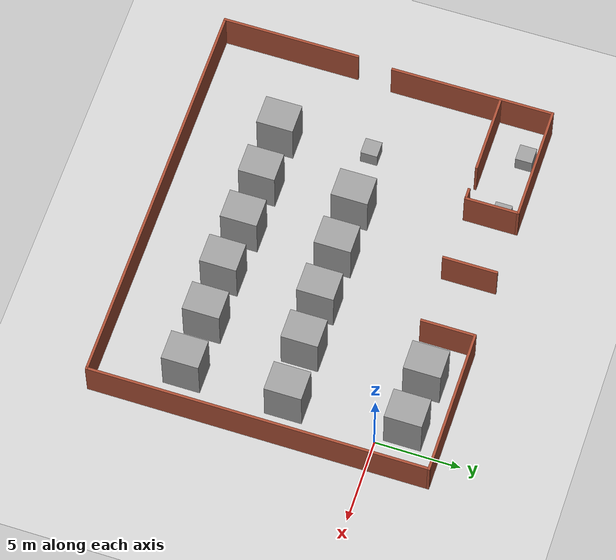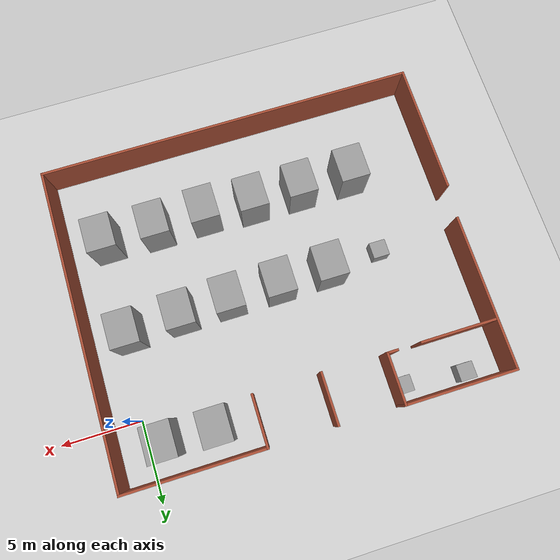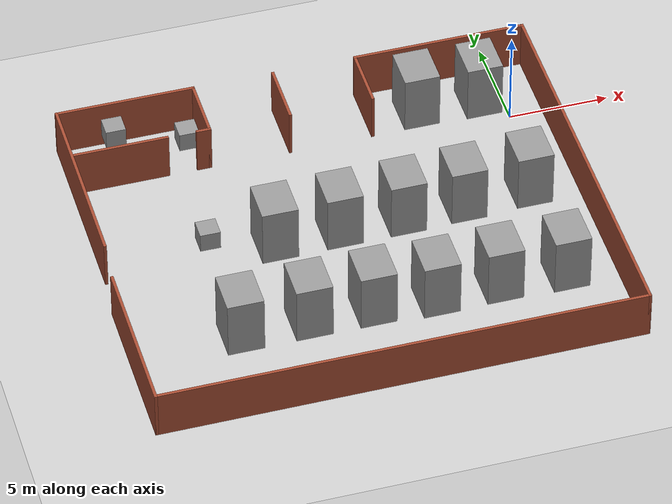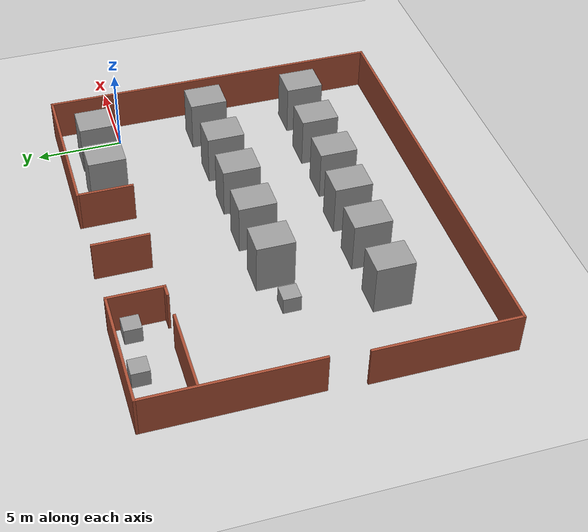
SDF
<sdf version="1.6">
 <world name="default">
  <light name="sun" type="directional">
   <pose>0 0 10 0 -0 0</pose>
   <diffuse>0.8 0.8 0.8 1</diffuse>
   <specular>0.2 0.2 0.2 1</specular>
   <attenuation>
    <range>1000</range>
    <constant>0.9</constant>
    <linear>0.01</linear>
    <quadratic>0.001</quadratic>
   </attenuation>
   <direction>-0.5 0.1 -0.9</direction>
  </light>
  <model name="ground_plane">
   <static>1</static>
   <link name="link">
    <collision name="collision">
     <geometry><plane><normal>0 0 1</normal><size>100 100</size></plane></geometry>
     <surface><friction><ode><mu>100</mu><mu2>50</mu2></ode></friction></surface>
    </collision>
    <visual name="visual">
     <cast_shadows>0</cast_shadows>
     <geometry><plane><normal>0 0 1</normal><size>100 100</size></plane></geometry>
     <material>
      <script><uri>file://media/materials/scripts/gazebo.material</uri><name>Gazebo/Grey</name></script>
     </material>
    </visual>
   </link>
  </model>
  <gravity>0 0 -9.8</gravity>
  <magnetic_field>6e-06 2.3e-05 -4.2e-05</magnetic_field>
  <atmosphere type="adiabatic"/>
  <physics name="default_physics" default="0" type="ode">
   <max_step_size>0.001</max_step_size>
   <real_time_factor>1</real_time_factor>
   <real_time_update_rate>1000</real_time_update_rate>
  </physics>
  <scene><ambient>0.4 0.4 0.4 1</ambient><background>0.7 0.7 0.7 1</background><shadows>1</shadows></scene>
  <spherical_coordinates>
   <surface_model>EARTH_WGS84</surface_model>
   <latitude_deg>0</latitude_deg>
   <longitude_deg>0</longitude_deg>
   <elevation>0</elevation>
   <heading_deg>0</heading_deg>
  </spherical_coordinates>
  <model name="enviroment_1">
   <pose>-10.1914 -6.24566 0 0 -0 0</pose>
   <link name="Wall_0">
    <collision name="Wall_0_Collision">
     <geometry><box><size>8.25 0.15 2.5</size></box></geometry>
     <pose>0 0 1.25 0 -0 0</pose>
    </collision>
    <visual name="Wall_0_Visual">
     <pose>0 0 1.25 0 -0 0</pose>
     <geometry><box><size>8.25 0.15 2.5</size></box></geometry>
     <material>
      <script><uri>file://media/materials/scripts/gazebo.material</uri><name>Gazebo/Bricks</name></script>
      <ambient>1 1 1 1</ambient>
     </material>
     <meta><layer>0</layer></meta>
    </visual>
    <pose>-11.925 -5.8997 0 0 -0 -1.5708</pose>
   </link>
   <link name="Wall_1">
    <collision name="Wall_1_Collision">
     <geometry><box><size>24 0.15 2.5</size></box></geometry>
     <pose>0 0 1.25 0 -0 0</pose>
    </collision>
    <visual name="Wall_1_Visual">
     <pose>0 0 1.25 0 -0 0</pose>
     <geometry><box><size>24 0.15 2.5</size></box></geometry>
     <material>
      <script><uri>file://media/materials/scripts/gazebo.material</uri><name>Gazebo/Bricks</name></script>
      <ambient>1 1 1 1</ambient>
     </material>
     <meta><layer>0</layer></meta>
    </visual>
    <pose>0 -9.9497 0 0 -0 0</pose>
   </link>
   <link name="Wall_11">
    <collision name="Wall_11_Collision">
     <geometry><box><size>3.25 0.15 2.5</size></box></geometry>
     <pose>0 0 1.25 0 -0 0</pose>
    </collision>
    <visual name="Wall_11_Visual">
     <pose>0 0 1.25 0 -0 0</pose>
     <geometry><box><size>3.25 0.15 2.5</size></box></geometry>
     <material>
      <script><uri>file://media/materials/scripts/gazebo.material</uri><name>Gazebo/Bricks</name></script>
      <ambient>1 1 1 1</ambient>
     </material>
     <meta><layer>0</layer></meta>
    </visual>
    <pose>-0.85303 8.33887 0 0 -0 1.5708</pose>
   </link>
   <link name="Wall_13">
    <collision name="Wall_13_Collision">
     <geometry><box><size>4.75 0.15 2.5</size></box></geometry>
     <pose>0 0 1.25 0 -0 0</pose>
    </collision>
    <visual name="Wall_13_Visual">
     <pose>0 0 1.25 0 -0 0</pose>
     <geometry><box><size>4.75 0.15 2.5</size></box></geometry>
     <material>
      <script><uri>file://media/materials/scripts/gazebo.material</uri><name>Gazebo/Bricks</name></script>
      <ambient>1 1 1 1</ambient>
     </material>
     <meta><layer>0</layer></meta>
    </visual>
    <pose>-9.29736 6.8497 0 0 -0 3.14159</pose>
   </link>
   <link name="Wall_2">
    <collision name="Wall_2_Collision">
     <geometry><box><size>20 0.15 2.5</size></box></geometry>
     <pose>0 0 1.25 0 -0 0</pose>
    </collision>
    <visual name="Wall_2_Visual">
     <pose>0 0 1.25 0 -0 0</pose>
     <geometry><box><size>20 0.15 2.5</size></box></geometry>
     <material>
      <script><uri>file://media/materials/scripts/gazebo.material</uri><name>Gazebo/Bricks</name></script>
      <ambient>1 1 1 1</ambient>
     </material>
     <meta><layer>0</layer></meta>
    </visual>
    <pose>11.925 -0.024702 0 0 -0 1.5708</pose>
   </link>
   <link name="Wall_3">
    <collision name="Wall_3_Collision">
     <geometry><box><size>8.75 0.15 2.5</size></box></geometry>
     <pose>0 0 1.25 0 -0 0</pose>
    </collision>
    <visual name="Wall_3_Visual">
     <pose>0 0 1.25 0 -0 0</pose>
     <geometry><box><size>8.75 0.15 2.5</size></box></geometry>
     <material>
      <script><uri>file://media/materials/scripts/gazebo.material</uri><name>Gazebo/Bricks</name></script>
      <ambient>1 1 1 1</ambient>
     </material>
     <meta><layer>0</layer></meta>
    </visual>
    <pose>7.625 9.9003 0 0 -0 3.14159</pose>
   </link>
   <link name="Wall_4">
    <collision name="Wall_4_Collision">
     <geometry><box><size>3.25 0.15 2.5</size></box></geometry>
     <pose>0 0 1.25 0 -0 0</pose>
    </collision>
    <visual name="Wall_4_Visual">
     <pose>0 0 1.25 0 -0 0</pose>
     <geometry><box><size>3.25 0.15 2.5</size></box></geometry>
     <material>
      <script><uri>file://media/materials/scripts/gazebo.material</uri><name>Gazebo/Bricks</name></script>
      <ambient>1 1 1 1</ambient>
     </material>
     <meta><layer>0</layer></meta>
    </visual>
    <pose>3.325 8.3503 0 0 -0 -1.5708</pose>
   </link>
   <link name="Wall_6">
    <collision name="Wall_6_Collision">
     <geometry><box><size>0.75 0.15 2.5</size></box></geometry>
     <pose>0 0 1.25 0 -0 0</pose>
    </collision>
    <visual name="Wall_6_Visual">
     <pose>0 0 1.25 0 -0 0</pose>
     <geometry><box><size>0.75 0.15 2.5</size></box></geometry>
     <material>
      <script><uri>file://media/materials/scripts/gazebo.material</uri><name>Gazebo/Bricks</name></script>
      <ambient>1 1 1 1</ambient>
     </material>
     <meta><layer>0</layer></meta>
    </visual>
    <pose>-5.17649 6.8497 0 0 -0 0</pose>
   </link>
   <link name="Wall_7">
    <collision name="Wall_7_Collision">
     <geometry><box><size>3.25 0.15 2.5</size></box></geometry>
     <pose>0 0 1.25 0 -0 0</pose>
    </collision>
    <visual name="Wall_7_Visual">
     <pose>0 0 1.25 0 -0 0</pose>
     <geometry><box><size>3.25 0.15 2.5</size></box></geometry>
     <material>
      <script><uri>file://media/materials/scripts/gazebo.material</uri><name>Gazebo/Bricks</name></script>
      <ambient>1 1 1 1</ambient>
     </material>
     <meta><layer>0</layer></meta>
    </visual>
    <pose>-4.87649 8.3997 0 0 -0 1.5708</pose>
   </link>
   <link name="Wall_8">
    <collision name="Wall_8_Collision">
     <geometry><box><size>7 0.15 2.5</size></box></geometry>
     <pose>0 0 1.25 0 -0 0</pose>
    </collision>
    <visual name="Wall_8_Visual">
     <pose>0 0 1.25 0 -0 0</pose>
     <geometry><box><size>7 0.15 2.5</size></box></geometry>
     <material>
      <script><uri>file://media/materials/scripts/gazebo.material</uri><name>Gazebo/Bricks</name></script>
      <ambient>1 1 1 1</ambient>
     </material>
     <meta><layer>0</layer></meta>
    </visual>
    <pose>-8.30149 9.9497 0 0 -0 3.14159</pose>
   </link>
   <link name="Wall_9">
    <collision name="Wall_9_Collision">
     <geometry><box><size>9.75 0.15 2.5</size></box></geometry>
     <pose>0 0 1.25 0 -0 0</pose>
    </collision>
    <visual name="Wall_9_Visual">
     <pose>0 0 1.25 0 -0 0</pose>
     <geometry><box><size>9.75 0.15 2.5</size></box></geometry>
     <material>
      <script><uri>file://media/materials/scripts/gazebo.material</uri><name>Gazebo/Bricks</name></script>
      <ambient>1 1 1 1</ambient>
     </material>
     <meta><layer>0</layer></meta>
    </visual>
    <pose>-11.7265 5.1497 0 0 -0 -1.5708</pose>
   </link>
   <static>1</static>
  </model>
  <model name="unit_box">
   <pose>-16.8179 -5.56497 1.53204 2e-06 0 0.000167</pose>
   <link name="link">
    <inertial>
     <mass>1</mass>
     <inertia>
      <ixx>0.166667</ixx>
      <ixy>0</ixy>
      <ixz>0</ixz>
      <iyy>0.166667</iyy>
      <iyz>0</iyz>
      <izz>0.166667</izz>
     </inertia>
    </inertial>
    <collision name="collision">
     <geometry><box><size>0.999999 0.999997 0.999999</size></box></geometry>
    </collision>
    <visual name="visual">
     <geometry><box><size>0.999999 0.999997 0.999999</size></box></geometry>
     <material>
      <script><name>Gazebo/Grey</name><uri>file://media/materials/scripts/gazebo.material</uri></script>
     </material>
    </visual>
   </link>
  </model>
  <model name="unit_box_clone">
   <pose>-13.5293 -5.56728 1.53204 2e-06 -0 0.000178</pose>
   <link name="link">
    <inertial>
     <mass>1</mass>
     <inertia>
      <ixx>0.166667</ixx>
      <ixy>0</ixy>
      <ixz>0</ixz>
      <iyy>0.166667</iyy>
      <iyz>0</iyz>
      <izz>0.166667</izz>
     </inertia>
    </inertial>
    <collision name="collision"><geometry><box><size>1.78607 2.17889 3.06409</size></box></geometry></collision>
    <visual name="visual">
     <geometry><box><size>1.78607 2.17889 3.06409</size></box></geometry>
     <material>
      <script><name>Gazebo/Grey</name><uri>file://media/materials/scripts/gazebo.material</uri></script>
     </material>
    </visual>
   </link>
  </model>
  <model name="unit_box_clone_0">
   <pose>-10.3045 -5.52445 1.53204 -2e-06 0 0.000155</pose>
   <link name="link">
    <inertial>
     <mass>1</mass>
     <inertia>
      <ixx>0.166667</ixx>
      <ixy>0</ixy>
      <ixz>0</ixz>
      <iyy>0.166667</iyy>
      <iyz>0</iyz>
      <izz>0.166667</izz>
     </inertia>
    </inertial>
    <collision name="collision"><geometry><box><size>1.78607 2.17889 3.06409</size></box></geometry></collision>
    <visual name="visual">
     <geometry><box><size>1.78607 2.17889 3.06409</size></box></geometry>
     <material>
      <script><name>Gazebo/Grey</name><uri>file://media/materials/scripts/gazebo.material</uri></script>
     </material>
    </visual>
   </link>
  </model>
  <model name="unit_box_clone_1">
   <pose>-7.13866 -5.51299 1.53204 -2e-06 0 0.000173</pose>
   <link name="link">
    <inertial>
     <mass>1</mass>
     <inertia>
      <ixx>0.166667</ixx>
      <ixy>0</ixy>
      <ixz>0</ixz>
      <iyy>0.166667</iyy>
      <iyz>0</iyz>
      <izz>0.166667</izz>
     </inertia>
    </inertial>
    <collision name="collision"><geometry><box><size>1.78607 2.17889 3.06409</size></box></geometry></collision>
    <visual name="visual">
     <geometry><box><size>1.78607 2.17889 3.06409</size></box></geometry>
     <material>
      <script><name>Gazebo/Grey</name><uri>file://media/materials/scripts/gazebo.material</uri></script>
     </material>
    </visual>
   </link>
  </model>
  <model name="unit_box_clone_2">
   <pose>-4.07857 -5.43019 1.53204 2e-06 -0 0.000177</pose>
   <link name="link">
    <inertial>
     <mass>1</mass>
     <inertia>
      <ixx>0.166667</ixx>
      <ixy>0</ixy>
      <ixz>0</ixz>
      <iyy>0.166667</iyy>
      <iyz>0</iyz>
      <izz>0.166667</izz>
     </inertia>
    </inertial>
    <collision name="collision"><geometry><box><size>1.78607 2.17889 3.06409</size></box></geometry></collision>
    <visual name="visual">
     <geometry><box><size>1.78607 2.17889 3.06409</size></box></geometry>
     <material>
      <script><name>Gazebo/Grey</name><uri>file://media/materials/scripts/gazebo.material</uri></script>
     </material>
    </visual>
   </link>
  </model>
  <model name="unit_box_clone_3">
   <pose>-0.716472 -5.28759 1.53204 2e-06 -0 0.000181</pose>
   <link name="link">
    <inertial>
     <mass>1</mass>
     <inertia>
      <ixx>0.166667</ixx>
      <ixy>0</ixy>
      <ixz>0</ixz>
      <iyy>0.166667</iyy>
      <iyz>0</iyz>
      <izz>0.166667</izz>
     </inertia>
    </inertial>
    <collision name="collision"><geometry><box><size>1.78607 2.17889 3.06409</size></box></geometry></collision>
    <visual name="visual">
     <geometry><box><size>1.78607 2.17889 3.06409</size></box></geometry>
     <material>
      <script><name>Gazebo/Grey</name><uri>file://media/materials/scripts/gazebo.material</uri></script>
     </material>
    </visual>
   </link>
  </model>
  <model name="unit_box_clone_4">
   <pose>-4.33647 1.60962 1.53204 -2e-06 -0 0.000178</pose>
   <link name="link">
    <inertial>
     <mass>1</mass>
     <inertia>
      <ixx>0.166667</ixx>
      <ixy>0</ixy>
      <ixz>0</ixz>
      <iyy>0.166667</iyy>
      <iyz>0</iyz>
      <izz>0.166667</izz>
     </inertia>
    </inertial>
    <collision name="collision"><geometry><box><size>1.78607 2.17889 3.06409</size></box></geometry></collision>
    <visual name="visual">
     <geometry><box><size>1.78607 2.17889 3.06409</size></box></geometry>
     <material>
      <script><name>Gazebo/Grey</name><uri>file://media/materials/scripts/gazebo.material</uri></script>
     </material>
    </visual>
   </link>
  </model>
  <model name="unit_box_clone_5">
   <pose>-1.16014 1.51426 1.53204 2e-06 -0 0.000161</pose>
   <link name="link">
    <inertial>
     <mass>1</mass>
     <inertia>
      <ixx>0.166667</ixx>
      <ixy>0</ixy>
      <ixz>0</ixz>
      <iyy>0.166667</iyy>
      <iyz>0</iyz>
      <izz>0.166667</izz>
     </inertia>
    </inertial>
    <collision name="collision"><geometry><box><size>1.78607 2.17889 3.06409</size></box></geometry></collision>
    <visual name="visual">
     <geometry><box><size>1.78607 2.17889 3.06409</size></box></geometry>
     <material>
      <script><name>Gazebo/Grey</name><uri>file://media/materials/scripts/gazebo.material</uri></script>
     </material>
    </visual>
   </link>
  </model>
  <model name="unit_box_clone_6">
   <pose>-16.7288 -11.0764 1.53204 2e-06 -0 0.000165</pose>
   <link name="link">
    <inertial>
     <mass>1</mass>
     <inertia>
      <ixx>0.166667</ixx>
      <ixy>0</ixy>
      <ixz>0</ixz>
      <iyy>0.166667</iyy>
      <iyz>0</iyz>
      <izz>0.166667</izz>
     </inertia>
    </inertial>
    <collision name="collision"><geometry><box><size>1.78607 2.17889 3.06409</size></box></geometry></collision>
    <visual name="visual">
     <geometry><box><size>1.78607 2.17889 3.06409</size></box></geometry>
     <material>
      <script><name>Gazebo/Grey</name><uri>file://media/materials/scripts/gazebo.material</uri></script>
     </material>
    </visual>
   </link>
  </model>
  <model name="unit_box_clone_7">
   <pose>-13.3908 -11.0623 1.53204 -2e-06 -0 0.000148</pose>
   <link name="link">
    <inertial>
     <mass>1</mass>
     <inertia>
      <ixx>0.166667</ixx>
      <ixy>0</ixy>
      <ixz>0</ixz>
      <iyy>0.166667</iyy>
      <iyz>0</iyz>
      <izz>0.166667</izz>
     </inertia>
    </inertial>
    <collision name="collision"><geometry><box><size>1.78607 2.17889 3.06409</size></box></geometry></collision>
    <visual name="visual">
     <geometry><box><size>1.78607 2.17889 3.06409</size></box></geometry>
     <material>
      <script><name>Gazebo/Grey</name><uri>file://media/materials/scripts/gazebo.material</uri></script>
     </material>
    </visual>
   </link>
  </model>
  <model name="unit_box_clone_8">
   <pose>-10.2622 -11.08 1.53204 -2e-06 0 0.000165</pose>
   <link name="link">
    <inertial>
     <mass>1</mass>
     <inertia>
      <ixx>0.166667</ixx>
      <ixy>0</ixy>
      <ixz>0</ixz>
      <iyy>0.166667</iyy>
      <iyz>0</iyz>
      <izz>0.166667</izz>
     </inertia>
    </inertial>
    <collision name="collision"><geometry><box><size>1.78607 2.17889 3.06409</size></box></geometry></collision>
    <visual name="visual">
     <geometry><box><size>1.78607 2.17889 3.06409</size></box></geometry>
     <material>
      <script><name>Gazebo/Grey</name><uri>file://media/materials/scripts/gazebo.material</uri></script>
     </material>
    </visual>
   </link>
  </model>
  <model name="unit_box_clone_9">
   <pose>-7.20283 -11.2599 1.53204 2e-06 -0 0.000155</pose>
   <link name="link">
    <inertial>
     <mass>1</mass>
     <inertia>
      <ixx>0.166667</ixx>
      <ixy>0</ixy>
      <ixz>0</ixz>
      <iyy>0.166667</iyy>
      <iyz>0</iyz>
      <izz>0.166667</izz>
     </inertia>
    </inertial>
    <collision name="collision"><geometry><box><size>1.78607 2.17889 3.06409</size></box></geometry></collision>
    <visual name="visual">
     <geometry><box><size>1.78607 2.17889 3.06409</size></box></geometry>
     <material>
      <script><name>Gazebo/Grey</name><uri>file://media/materials/scripts/gazebo.material</uri></script>
     </material>
    </visual>
   </link>
  </model>
  <model name="unit_box_clone_10">
   <pose>-4.0504 -11.202 1.53205 1e-06 -0 0.000134</pose>
   <link name="link">
    <inertial>
     <mass>1</mass>
     <inertia>
      <ixx>0.166667</ixx>
      <ixy>0</ixy>
      <ixz>0</ixz>
      <iyy>0.166667</iyy>
      <iyz>0</iyz>
      <izz>0.166667</izz>
     </inertia>
    </inertial>
    <collision name="collision"><geometry><box><size>1.78607 2.17889 3.06409</size></box></geometry></collision>
    <visual name="visual">
     <geometry><box><size>1.78607 2.17889 3.06409</size></box></geometry>
     <material>
      <script><name>Gazebo/Grey</name><uri>file://media/materials/scripts/gazebo.material</uri></script>
     </material>
    </visual>
   </link>
  </model>
  <model name="unit_box_clone_11">
   <pose>-0.777197 -11.2983 1.53204 2e-06 -0 0.00015</pose>
   <link name="link">
    <inertial>
     <mass>1</mass>
     <inertia>
      <ixx>0.166667</ixx>
      <ixy>0</ixy>
      <ixz>0</ixz>
      <iyy>0.166667</iyy>
      <iyz>0</iyz>
      <izz>0.166667</izz>
     </inertia>
    </inertial>
    <collision name="collision"><geometry><box><size>1.78607 2.17889 3.06409</size></box></geometry></collision>
    <visual name="visual">
     <geometry><box><size>1.78607 2.17889 3.06409</size></box></geometry>
     <material>
      <script><name>Gazebo/Grey</name><uri>file://media/materials/scripts/gazebo.material</uri></script>
     </material>
    </visual>
   </link>
  </model>
  <model name="unit_box_0">
   <pose>-19.2854 2.94662 1.29323 0 -3e-06 -0.001295</pose>
   <link name="link">
    <inertial>
     <mass>1</mass>
     <inertia>
      <ixx>0.166667</ixx>
      <ixy>0</ixy>
      <ixz>0</ixz>
      <iyy>0.166667</iyy>
      <iyz>0</iyz>
      <izz>0.166667</izz>
     </inertia>
    </inertial>
    <collision name="collision"><geometry><box><size>0.999998 1 1</size></box></geometry></collision>
    <visual name="visual">
     <geometry><box><size>0.999998 1 1</size></box></geometry>
     <material>
      <script><name>Gazebo/Grey</name><uri>file://media/materials/scripts/gazebo.material</uri></script>
     </material>
    </visual>
   </link>
  </model>
  <model name="unit_box_1">
   <pose>-15.7115 2.60914 0.499995 0 1e-05 0</pose>
   <link name="link">
    <inertial>
     <mass>1</mass>
     <inertia>
      <ixx>0.166667</ixx>
      <ixy>0</ixy>
      <ixz>0</ixz>
      <iyy>0.166667</iyy>
      <iyz>0</iyz>
      <izz>0.166667</izz>
     </inertia>
    </inertial>
    <collision name="collision"><geometry><box><size>1 0.999996 1</size></box></geometry></collision>
    <visual name="visual">
     <geometry><box><size>1 0.999996 1</size></box></geometry>
     <material>
      <script><name>Gazebo/Grey</name><uri>file://media/materials/scripts/gazebo.material</uri></script>
     </material>
    </visual>
   </link>
  </model>
 </world>
</sdf>
